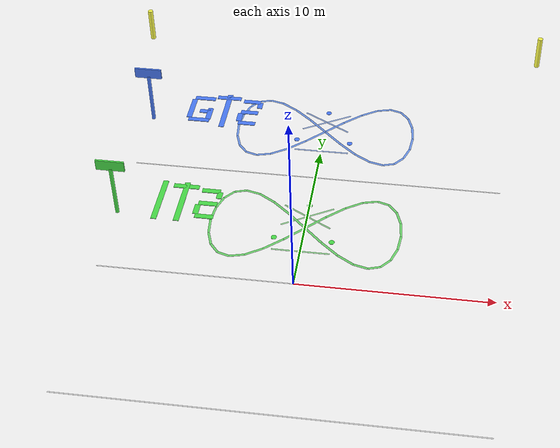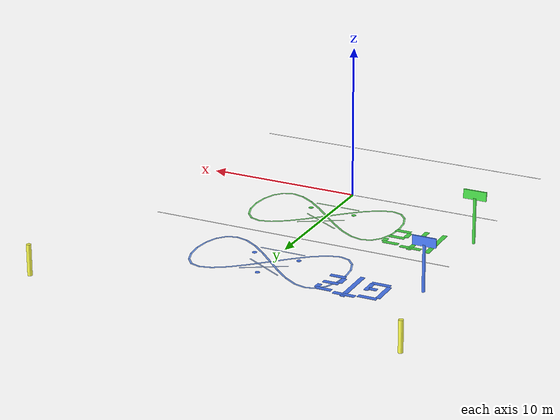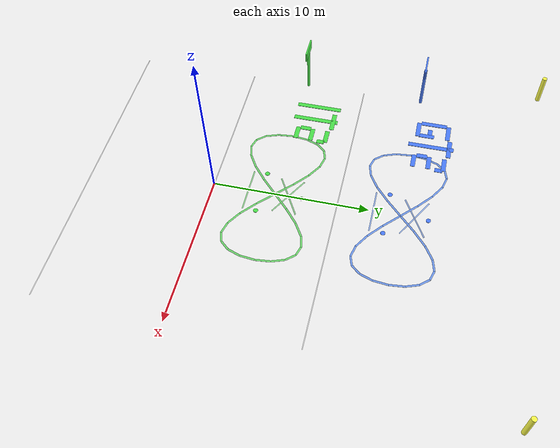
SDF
<sdf version="1.6">
 <world name="professional_formation_arena">
  <model name="traj_it2">
   <static>true</static>
   <link name="path">
    <visual name="seg0">
     <pose>0.488 4.478 0.015 0 0 0.7757</pose>
     <geometry><box><size>1.366 0.12 0.015</size></box></geometry>
     <material><ambient>0.3 0.85 0.3 0.85</ambient><diffuse>0.4 0.9 0.4 0.85</diffuse></material>
    </visual>
    <visual name="seg1">
     <pose>1.444 5.362 0.015 0 0 0.7130</pose>
     <geometry><box><size>1.240 0.12 0.015</size></box></geometry>
     <material><ambient>0.3 0.85 0.3 0.85</ambient><diffuse>0.4 0.9 0.4 0.85</diffuse></material>
    </visual>
    <visual name="seg2">
     <pose>2.346 6.039 0.015 0 0 0.5600</pose>
     <geometry><box><size>1.020 0.12 0.015</size></box></geometry>
     <material><ambient>0.3 0.85 0.3 0.85</ambient><diffuse>0.4 0.9 0.4 0.85</diffuse></material>
    </visual>
    <visual name="seg3">
     <pose>3.157 6.405 0.015 0 0 0.2461</pose>
     <geometry><box><size>0.781 0.12 0.015</size></box></geometry>
     <material><ambient>0.3 0.85 0.3 0.85</ambient><diffuse>0.4 0.9 0.4 0.85</diffuse></material>
    </visual>
    <visual name="seg4">
     <pose>3.846 6.405 0.015 0 0 -0.2970</pose>
     <geometry><box><size>0.650 0.12 0.015</size></box></geometry>
     <material><ambient>0.3 0.85 0.3 0.85</ambient><diffuse>0.4 0.9 0.4 0.85</diffuse></material>
    </visual>
    <visual name="seg5">
     <pose>4.388 6.039 0.015 0 0 -0.8648</pose>
     <geometry><box><size>0.712 0.12 0.015</size></box></geometry>
     <material><ambient>0.3 0.85 0.3 0.85</ambient><diffuse>0.4 0.9 0.4 0.85</diffuse></material>
    </visual>
    <visual name="seg6">
     <pose>4.762 5.362 0.015 0 0 -1.2334</pose>
     <geometry><box><size>0.860 0.12 0.015</size></box></geometry>
     <material><ambient>0.3 0.85 0.3 0.85</ambient><diffuse>0.4 0.9 0.4 0.85</diffuse></material>
    </visual>
    <visual name="seg7">
     <pose>4.952 4.478 0.015 0 0 -1.4707</pose>
     <geometry><box><size>0.962 0.12 0.015</size></box></geometry>
     <material><ambient>0.3 0.85 0.3 0.85</ambient><diffuse>0.4 0.9 0.4 0.85</diffuse></material>
    </visual>
    <visual name="seg8">
     <pose>4.952 3.522 0.015 0 0 -1.6709</pose>
     <geometry><box><size>0.962 0.12 0.015</size></box></geometry>
     <material><ambient>0.3 0.85 0.3 0.85</ambient><diffuse>0.4 0.9 0.4 0.85</diffuse></material>
    </visual>
    <visual name="seg9">
     <pose>4.762 2.638 0.015 0 0 -1.9082</pose>
     <geometry><box><size>0.860 0.12 0.015</size></box></geometry>
     <material><ambient>0.3 0.85 0.3 0.85</ambient><diffuse>0.4 0.9 0.4 0.85</diffuse></material>
    </visual>
    <visual name="seg10">
     <pose>4.388 1.961 0.015 0 0 -2.2768</pose>
     <geometry><box><size>0.712 0.12 0.015</size></box></geometry>
     <material><ambient>0.3 0.85 0.3 0.85</ambient><diffuse>0.4 0.9 0.4 0.85</diffuse></material>
    </visual>
    <visual name="seg11">
     <pose>3.846 1.595 0.015 0 0 -2.8446</pose>
     <geometry><box><size>0.650 0.12 0.015</size></box></geometry>
     <material><ambient>0.3 0.85 0.3 0.85</ambient><diffuse>0.4 0.9 0.4 0.85</diffuse></material>
    </visual>
    <visual name="seg12">
     <pose>3.157 1.595 0.015 0 0 2.8955</pose>
     <geometry><box><size>0.781 0.12 0.015</size></box></geometry>
     <material><ambient>0.3 0.85 0.3 0.85</ambient><diffuse>0.4 0.9 0.4 0.85</diffuse></material>
    </visual>
    <visual name="seg13">
     <pose>2.346 1.961 0.015 0 0 2.5816</pose>
     <geometry><box><size>1.020 0.12 0.015</size></box></geometry>
     <material><ambient>0.3 0.85 0.3 0.85</ambient><diffuse>0.4 0.9 0.4 0.85</diffuse></material>
    </visual>
    <visual name="seg14">
     <pose>1.444 2.638 0.015 0 0 2.4286</pose>
     <geometry><box><size>1.240 0.12 0.015</size></box></geometry>
     <material><ambient>0.3 0.85 0.3 0.85</ambient><diffuse>0.4 0.9 0.4 0.85</diffuse></material>
    </visual>
    <visual name="seg15">
     <pose>0.488 3.522 0.015 0 0 2.3659</pose>
     <geometry><box><size>1.366 0.12 0.015</size></box></geometry>
     <material><ambient>0.3 0.85 0.3 0.85</ambient><diffuse>0.4 0.9 0.4 0.85</diffuse></material>
    </visual>
    <visual name="seg16">
     <pose>-0.488 4.478 0.015 0 0 2.3659</pose>
     <geometry><box><size>1.366 0.12 0.015</size></box></geometry>
     <material><ambient>0.3 0.85 0.3 0.85</ambient><diffuse>0.4 0.9 0.4 0.85</diffuse></material>
    </visual>
    <visual name="seg17">
     <pose>-1.444 5.362 0.015 0 0 2.4286</pose>
     <geometry><box><size>1.240 0.12 0.015</size></box></geometry>
     <material><ambient>0.3 0.85 0.3 0.85</ambient><diffuse>0.4 0.9 0.4 0.85</diffuse></material>
    </visual>
    <visual name="seg18">
     <pose>-2.346 6.039 0.015 0 0 2.5816</pose>
     <geometry><box><size>1.020 0.12 0.015</size></box></geometry>
     <material><ambient>0.3 0.85 0.3 0.85</ambient><diffuse>0.4 0.9 0.4 0.85</diffuse></material>
    </visual>
    <visual name="seg19">
     <pose>-3.157 6.405 0.015 0 0 2.8955</pose>
     <geometry><box><size>0.781 0.12 0.015</size></box></geometry>
     <material><ambient>0.3 0.85 0.3 0.85</ambient><diffuse>0.4 0.9 0.4 0.85</diffuse></material>
    </visual>
    <visual name="seg20">
     <pose>-3.846 6.405 0.015 0 0 -2.8446</pose>
     <geometry><box><size>0.650 0.12 0.015</size></box></geometry>
     <material><ambient>0.3 0.85 0.3 0.85</ambient><diffuse>0.4 0.9 0.4 0.85</diffuse></material>
    </visual>
    <visual name="seg21">
     <pose>-4.388 6.039 0.015 0 0 -2.2768</pose>
     <geometry><box><size>0.712 0.12 0.015</size></box></geometry>
     <material><ambient>0.3 0.85 0.3 0.85</ambient><diffuse>0.4 0.9 0.4 0.85</diffuse></material>
    </visual>
    <visual name="seg22">
     <pose>-4.762 5.362 0.015 0 0 -1.9082</pose>
     <geometry><box><size>0.860 0.12 0.015</size></box></geometry>
     <material><ambient>0.3 0.85 0.3 0.85</ambient><diffuse>0.4 0.9 0.4 0.85</diffuse></material>
    </visual>
    <visual name="seg23">
     <pose>-4.952 4.478 0.015 0 0 -1.6709</pose>
     <geometry><box><size>0.962 0.12 0.015</size></box></geometry>
     <material><ambient>0.3 0.85 0.3 0.85</ambient><diffuse>0.4 0.9 0.4 0.85</diffuse></material>
    </visual>
    <visual name="seg24">
     <pose>-4.952 3.522 0.015 0 0 -1.4707</pose>
     <geometry><box><size>0.962 0.12 0.015</size></box></geometry>
     <material><ambient>0.3 0.85 0.3 0.85</ambient><diffuse>0.4 0.9 0.4 0.85</diffuse></material>
    </visual>
    <visual name="seg25">
     <pose>-4.762 2.638 0.015 0 0 -1.2334</pose>
     <geometry><box><size>0.860 0.12 0.015</size></box></geometry>
     <material><ambient>0.3 0.85 0.3 0.85</ambient><diffuse>0.4 0.9 0.4 0.85</diffuse></material>
    </visual>
    <visual name="seg26">
     <pose>-4.388 1.961 0.015 0 0 -0.8648</pose>
     <geometry><box><size>0.712 0.12 0.015</size></box></geometry>
     <material><ambient>0.3 0.85 0.3 0.85</ambient><diffuse>0.4 0.9 0.4 0.85</diffuse></material>
    </visual>
    <visual name="seg27">
     <pose>-3.846 1.595 0.015 0 0 -0.2970</pose>
     <geometry><box><size>0.650 0.12 0.015</size></box></geometry>
     <material><ambient>0.3 0.85 0.3 0.85</ambient><diffuse>0.4 0.9 0.4 0.85</diffuse></material>
    </visual>
    <visual name="seg28">
     <pose>-3.157 1.595 0.015 0 0 0.2461</pose>
     <geometry><box><size>0.781 0.12 0.015</size></box></geometry>
     <material><ambient>0.3 0.85 0.3 0.85</ambient><diffuse>0.4 0.9 0.4 0.85</diffuse></material>
    </visual>
    <visual name="seg29">
     <pose>-2.346 1.961 0.015 0 0 0.5600</pose>
     <geometry><box><size>1.020 0.12 0.015</size></box></geometry>
     <material><ambient>0.3 0.85 0.3 0.85</ambient><diffuse>0.4 0.9 0.4 0.85</diffuse></material>
    </visual>
    <visual name="seg30">
     <pose>-1.444 2.638 0.015 0 0 0.7130</pose>
     <geometry><box><size>1.240 0.12 0.015</size></box></geometry>
     <material><ambient>0.3 0.85 0.3 0.85</ambient><diffuse>0.4 0.9 0.4 0.85</diffuse></material>
    </visual>
    <visual name="seg31">
     <pose>-0.488 3.522 0.015 0 0 0.7757</pose>
     <geometry><box><size>1.366 0.12 0.015</size></box></geometry>
     <material><ambient>0.3 0.85 0.3 0.85</ambient><diffuse>0.4 0.9 0.4 0.85</diffuse></material>
    </visual>
   </link>
  </model>
  <model name="traj_gt2">
   <static>true</static>
   <link name="path">
    <visual name="seg0">
     <pose>0.488 12.478 0.015 0 0 0.7757</pose>
     <geometry><box><size>1.366 0.12 0.015</size></box></geometry>
     <material><ambient>0.3 0.5 1 0.85</ambient><diffuse>0.4 0.6 1 0.85</diffuse></material>
    </visual>
    <visual name="seg1">
     <pose>1.444 13.362 0.015 0 0 0.7130</pose>
     <geometry><box><size>1.240 0.12 0.015</size></box></geometry>
     <material><ambient>0.3 0.5 1 0.85</ambient><diffuse>0.4 0.6 1 0.85</diffuse></material>
    </visual>
    <visual name="seg2">
     <pose>2.346 14.039 0.015 0 0 0.5600</pose>
     <geometry><box><size>1.020 0.12 0.015</size></box></geometry>
     <material><ambient>0.3 0.5 1 0.85</ambient><diffuse>0.4 0.6 1 0.85</diffuse></material>
    </visual>
    <visual name="seg3">
     <pose>3.157 14.405 0.015 0 0 0.2461</pose>
     <geometry><box><size>0.781 0.12 0.015</size></box></geometry>
     <material><ambient>0.3 0.5 1 0.85</ambient><diffuse>0.4 0.6 1 0.85</diffuse></material>
    </visual>
    <visual name="seg4">
     <pose>3.846 14.405 0.015 0 0 -0.2970</pose>
     <geometry><box><size>0.650 0.12 0.015</size></box></geometry>
     <material><ambient>0.3 0.5 1 0.85</ambient><diffuse>0.4 0.6 1 0.85</diffuse></material>
    </visual>
    <visual name="seg5">
     <pose>4.388 14.039 0.015 0 0 -0.8648</pose>
     <geometry><box><size>0.712 0.12 0.015</size></box></geometry>
     <material><ambient>0.3 0.5 1 0.85</ambient><diffuse>0.4 0.6 1 0.85</diffuse></material>
    </visual>
    <visual name="seg6">
     <pose>4.762 13.362 0.015 0 0 -1.2334</pose>
     <geometry><box><size>0.860 0.12 0.015</size></box></geometry>
     <material><ambient>0.3 0.5 1 0.85</ambient><diffuse>0.4 0.6 1 0.85</diffuse></material>
    </visual>
    <visual name="seg7">
     <pose>4.952 12.478 0.015 0 0 -1.4707</pose>
     <geometry><box><size>0.962 0.12 0.015</size></box></geometry>
     <material><ambient>0.3 0.5 1 0.85</ambient><diffuse>0.4 0.6 1 0.85</diffuse></material>
    </visual>
    <visual name="seg8">
     <pose>4.952 11.522 0.015 0 0 -1.6709</pose>
     <geometry><box><size>0.962 0.12 0.015</size></box></geometry>
     <material><ambient>0.3 0.5 1 0.85</ambient><diffuse>0.4 0.6 1 0.85</diffuse></material>
    </visual>
    <visual name="seg9">
     <pose>4.762 10.638 0.015 0 0 -1.9082</pose>
     <geometry><box><size>0.860 0.12 0.015</size></box></geometry>
     <material><ambient>0.3 0.5 1 0.85</ambient><diffuse>0.4 0.6 1 0.85</diffuse></material>
    </visual>
    <visual name="seg10">
     <pose>4.388 9.961 0.015 0 0 -2.2768</pose>
     <geometry><box><size>0.712 0.12 0.015</size></box></geometry>
     <material><ambient>0.3 0.5 1 0.85</ambient><diffuse>0.4 0.6 1 0.85</diffuse></material>
    </visual>
    <visual name="seg11">
     <pose>3.846 9.595 0.015 0 0 -2.8446</pose>
     <geometry><box><size>0.650 0.12 0.015</size></box></geometry>
     <material><ambient>0.3 0.5 1 0.85</ambient><diffuse>0.4 0.6 1 0.85</diffuse></material>
    </visual>
    <visual name="seg12">
     <pose>3.157 9.595 0.015 0 0 2.8955</pose>
     <geometry><box><size>0.781 0.12 0.015</size></box></geometry>
     <material><ambient>0.3 0.5 1 0.85</ambient><diffuse>0.4 0.6 1 0.85</diffuse></material>
    </visual>
    <visual name="seg13">
     <pose>2.346 9.961 0.015 0 0 2.5816</pose>
     <geometry><box><size>1.020 0.12 0.015</size></box></geometry>
     <material><ambient>0.3 0.5 1 0.85</ambient><diffuse>0.4 0.6 1 0.85</diffuse></material>
    </visual>
    <visual name="seg14">
     <pose>1.444 10.638 0.015 0 0 2.4286</pose>
     <geometry><box><size>1.240 0.12 0.015</size></box></geometry>
     <material><ambient>0.3 0.5 1 0.85</ambient><diffuse>0.4 0.6 1 0.85</diffuse></material>
    </visual>
    <visual name="seg15">
     <pose>0.488 11.522 0.015 0 0 2.3659</pose>
     <geometry><box><size>1.366 0.12 0.015</size></box></geometry>
     <material><ambient>0.3 0.5 1 0.85</ambient><diffuse>0.4 0.6 1 0.85</diffuse></material>
    </visual>
    <visual name="seg16">
     <pose>-0.488 12.478 0.015 0 0 2.3659</pose>
     <geometry><box><size>1.366 0.12 0.015</size></box></geometry>
     <material><ambient>0.3 0.5 1 0.85</ambient><diffuse>0.4 0.6 1 0.85</diffuse></material>
    </visual>
    <visual name="seg17">
     <pose>-1.444 13.362 0.015 0 0 2.4286</pose>
     <geometry><box><size>1.240 0.12 0.015</size></box></geometry>
     <material><ambient>0.3 0.5 1 0.85</ambient><diffuse>0.4 0.6 1 0.85</diffuse></material>
    </visual>
    <visual name="seg18">
     <pose>-2.346 14.039 0.015 0 0 2.5816</pose>
     <geometry><box><size>1.020 0.12 0.015</size></box></geometry>
     <material><ambient>0.3 0.5 1 0.85</ambient><diffuse>0.4 0.6 1 0.85</diffuse></material>
    </visual>
    <visual name="seg19">
     <pose>-3.157 14.405 0.015 0 0 2.8955</pose>
     <geometry><box><size>0.781 0.12 0.015</size></box></geometry>
     <material><ambient>0.3 0.5 1 0.85</ambient><diffuse>0.4 0.6 1 0.85</diffuse></material>
    </visual>
    <visual name="seg20">
     <pose>-3.846 14.405 0.015 0 0 -2.8446</pose>
     <geometry><box><size>0.650 0.12 0.015</size></box></geometry>
     <material><ambient>0.3 0.5 1 0.85</ambient><diffuse>0.4 0.6 1 0.85</diffuse></material>
    </visual>
    <visual name="seg21">
     <pose>-4.388 14.039 0.015 0 0 -2.2768</pose>
     <geometry><box><size>0.712 0.12 0.015</size></box></geometry>
     <material><ambient>0.3 0.5 1 0.85</ambient><diffuse>0.4 0.6 1 0.85</diffuse></material>
    </visual>
    <visual name="seg22">
     <pose>-4.762 13.362 0.015 0 0 -1.9082</pose>
     <geometry><box><size>0.860 0.12 0.015</size></box></geometry>
     <material><ambient>0.3 0.5 1 0.85</ambient><diffuse>0.4 0.6 1 0.85</diffuse></material>
    </visual>
    <visual name="seg23">
     <pose>-4.952 12.478 0.015 0 0 -1.6709</pose>
     <geometry><box><size>0.962 0.12 0.015</size></box></geometry>
     <material><ambient>0.3 0.5 1 0.85</ambient><diffuse>0.4 0.6 1 0.85</diffuse></material>
    </visual>
    <visual name="seg24">
     <pose>-4.952 11.522 0.015 0 0 -1.4707</pose>
     <geometry><box><size>0.962 0.12 0.015</size></box></geometry>
     <material><ambient>0.3 0.5 1 0.85</ambient><diffuse>0.4 0.6 1 0.85</diffuse></material>
    </visual>
    <visual name="seg25">
     <pose>-4.762 10.638 0.015 0 0 -1.2334</pose>
     <geometry><box><size>0.860 0.12 0.015</size></box></geometry>
     <material><ambient>0.3 0.5 1 0.85</ambient><diffuse>0.4 0.6 1 0.85</diffuse></material>
    </visual>
    <visual name="seg26">
     <pose>-4.388 9.961 0.015 0 0 -0.8648</pose>
     <geometry><box><size>0.712 0.12 0.015</size></box></geometry>
     <material><ambient>0.3 0.5 1 0.85</ambient><diffuse>0.4 0.6 1 0.85</diffuse></material>
    </visual>
    <visual name="seg27">
     <pose>-3.846 9.595 0.015 0 0 -0.2970</pose>
     <geometry><box><size>0.650 0.12 0.015</size></box></geometry>
     <material><ambient>0.3 0.5 1 0.85</ambient><diffuse>0.4 0.6 1 0.85</diffuse></material>
    </visual>
    <visual name="seg28">
     <pose>-3.157 9.595 0.015 0 0 0.2461</pose>
     <geometry><box><size>0.781 0.12 0.015</size></box></geometry>
     <material><ambient>0.3 0.5 1 0.85</ambient><diffuse>0.4 0.6 1 0.85</diffuse></material>
    </visual>
    <visual name="seg29">
     <pose>-2.346 9.961 0.015 0 0 0.5600</pose>
     <geometry><box><size>1.020 0.12 0.015</size></box></geometry>
     <material><ambient>0.3 0.5 1 0.85</ambient><diffuse>0.4 0.6 1 0.85</diffuse></material>
    </visual>
    <visual name="seg30">
     <pose>-1.444 10.638 0.015 0 0 0.7130</pose>
     <geometry><box><size>1.240 0.12 0.015</size></box></geometry>
     <material><ambient>0.3 0.5 1 0.85</ambient><diffuse>0.4 0.6 1 0.85</diffuse></material>
    </visual>
    <visual name="seg31">
     <pose>-0.488 11.522 0.015 0 0 0.7757</pose>
     <geometry><box><size>1.366 0.12 0.015</size></box></geometry>
     <material><ambient>0.3 0.5 1 0.85</ambient><diffuse>0.4 0.6 1 0.85</diffuse></material>
    </visual>
   </link>
  </model>
  <model name="post_it2">
   <static>true</static>
   <pose>-10 4 0 0 0 0</pose>
   <link name="link">
    <visual name="pole">
     <pose>0 0 1.5 0 0 0</pose>
     <geometry><cylinder><radius>0.1</radius><length>3.0</length></cylinder></geometry>
     <material><ambient>0.2 0.8 0.2 1</ambient><diffuse>0.3 0.9 0.3 1</diffuse></material>
    </visual>
    <visual name="sign">
     <pose>0 0 3.2 0 0 0</pose>
     <geometry><box><size>1.5 0.1 0.6</size></box></geometry>
     <material><ambient>0.2 0.8 0.2 1</ambient><diffuse>0.3 0.9 0.3 1</diffuse></material>
    </visual>
   </link>
  </model>
  <model name="post_gt2">
   <static>true</static>
   <pose>-10 12 0 0 0 0</pose>
   <link name="link">
    <visual name="pole">
     <pose>0 0 1.5 0 0 0</pose>
     <geometry><cylinder><radius>0.1</radius><length>3.0</length></cylinder></geometry>
     <material><ambient>0.2 0.4 1 1</ambient><diffuse>0.3 0.5 1 1</diffuse></material>
    </visual>
    <visual name="sign">
     <pose>0 0 3.2 0 0 0</pose>
     <geometry><box><size>1.5 0.1 0.6</size></box></geometry>
     <material><ambient>0.2 0.4 1 1</ambient><diffuse>0.3 0.5 1 1</diffuse></material>
    </visual>
   </link>
  </model>
  <model name="corner_nw">
   <static>true</static>
   <pose>-12 20 0 0 0 0</pose>
   <link name="link">
    <visual name="v">
     <pose>0 0 1 0 0 0</pose>
     <geometry><cylinder><radius>0.15</radius><length>2.0</length></cylinder></geometry>
     <material><ambient>0.9 0.9 0.2 1</ambient><diffuse>1 1 0.3 1</diffuse></material>
    </visual>
   </link>
  </model>
  <model name="corner_ne">
   <static>true</static>
   <pose>12 20 0 0 0 0</pose>
   <link name="link">
    <visual name="v">
     <pose>0 0 1 0 0 0</pose>
     <geometry><cylinder><radius>0.15</radius><length>2.0</length></cylinder></geometry>
     <material><ambient>0.9 0.9 0.2 1</ambient><diffuse>1 1 0.3 1</diffuse></material>
    </visual>
   </link>
  </model>
  <model name="lane_lines">
   <static>true</static>
   <link name="link">
    <visual name="line1">
     <pose>0 -8 0.01 0 0 0</pose>
     <geometry><box><size>20 0.05 0.01</size></box></geometry>
     <material><ambient>1 1 1 0.5</ambient><diffuse>1 1 1 0.5</diffuse></material>
    </visual>
    <visual name="line2">
     <pose>0 0 0.01 0 0 0</pose>
     <geometry><box><size>20 0.05 0.01</size></box></geometry>
     <material><ambient>1 1 1 0.5</ambient><diffuse>1 1 1 0.5</diffuse></material>
    </visual>
    <visual name="line3">
     <pose>0 8 0.01 0 0 0</pose>
     <geometry><box><size>20 0.05 0.01</size></box></geometry>
     <material><ambient>1 1 1 0.5</ambient><diffuse>1 1 1 0.5</diffuse></material>
    </visual>
   </link>
  </model>
  <model name="label_ground_it2">
   <static>true</static>
   <pose>-8 4 0.02 0 0 0</pose>
   <link name="link">
    <visual name="i1">
     <pose>0 1.2 0 0 0 0</pose>
     <geometry><box><size>0.3 3.0 0.03</size></box></geometry>
     <material><ambient>0.2 0.8 0.2 1</ambient><diffuse>0.3 0.9 0.3 1</diffuse></material>
    </visual>
    <visual name="t1">
     <pose>1.2 1.2 0 0 0 0</pose>
     <geometry><box><size>0.3 3.0 0.03</size></box></geometry>
     <material><ambient>0.2 0.8 0.2 1</ambient><diffuse>0.3 0.9 0.3 1</diffuse></material>
    </visual>
    <visual name="t2">
     <pose>1.2 2.4 0 0 0 0</pose>
     <geometry><box><size>1.4 0.3 0.03</size></box></geometry>
     <material><ambient>0.2 0.8 0.2 1</ambient><diffuse>0.3 0.9 0.3 1</diffuse></material>
    </visual>
    <visual name="n1">
     <pose>2.6 2.2 0 0 0 0</pose>
     <geometry><box><size>1.0 0.3 0.03</size></box></geometry>
     <material><ambient>0.2 0.8 0.2 1</ambient><diffuse>0.3 0.9 0.3 1</diffuse></material>
    </visual>
    <visual name="n2">
     <pose>3.1 1.9 0 0 0 0</pose>
     <geometry><box><size>0.3 0.5 0.03</size></box></geometry>
     <material><ambient>0.2 0.8 0.2 1</ambient><diffuse>0.3 0.9 0.3 1</diffuse></material>
    </visual>
    <visual name="n3">
     <pose>2.6 1.2 0 0 0 0</pose>
     <geometry><box><size>1.0 0.3 0.03</size></box></geometry>
     <material><ambient>0.2 0.8 0.2 1</ambient><diffuse>0.3 0.9 0.3 1</diffuse></material>
    </visual>
    <visual name="n4">
     <pose>2.1 0.7 0 0 0 0</pose>
     <geometry><box><size>0.3 0.7 0.03</size></box></geometry>
     <material><ambient>0.2 0.8 0.2 1</ambient><diffuse>0.3 0.9 0.3 1</diffuse></material>
    </visual>
    <visual name="n5">
     <pose>2.6 0.2 0 0 0 0</pose>
     <geometry><box><size>1.0 0.3 0.03</size></box></geometry>
     <material><ambient>0.2 0.8 0.2 1</ambient><diffuse>0.3 0.9 0.3 1</diffuse></material>
    </visual>
   </link>
  </model>
  <model name="label_ground_gt2">
   <static>true</static>
   <pose>-8 12 0.02 0 0 0</pose>
   <link name="link">
    <visual name="g1">
     <pose>0.6 2.2 0 0 0 0</pose>
     <geometry><box><size>1.2 0.3 0.03</size></box></geometry>
     <material><ambient>0.2 0.4 1 1</ambient><diffuse>0.3 0.5 1 1</diffuse></material>
    </visual>
    <visual name="g2">
     <pose>0 1.2 0 0 0 0</pose>
     <geometry><box><size>0.3 1.7 0.03</size></box></geometry>
     <material><ambient>0.2 0.4 1 1</ambient><diffuse>0.3 0.5 1 1</diffuse></material>
    </visual>
    <visual name="g3">
     <pose>0.6 0.2 0 0 0 0</pose>
     <geometry><box><size>1.2 0.3 0.03</size></box></geometry>
     <material><ambient>0.2 0.4 1 1</ambient><diffuse>0.3 0.5 1 1</diffuse></material>
    </visual>
    <visual name="g4">
     <pose>1.1 0.8 0 0 0 0</pose>
     <geometry><box><size>0.3 1.0 0.03</size></box></geometry>
     <material><ambient>0.2 0.4 1 1</ambient><diffuse>0.3 0.5 1 1</diffuse></material>
    </visual>
    <visual name="g5">
     <pose>0.8 1.0 0 0 0 0</pose>
     <geometry><box><size>0.6 0.3 0.03</size></box></geometry>
     <material><ambient>0.2 0.4 1 1</ambient><diffuse>0.3 0.5 1 1</diffuse></material>
    </visual>
    <visual name="t1">
     <pose>2.0 1.2 0 0 0 0</pose>
     <geometry><box><size>0.3 3.0 0.03</size></box></geometry>
     <material><ambient>0.2 0.4 1 1</ambient><diffuse>0.3 0.5 1 1</diffuse></material>
    </visual>
    <visual name="t2">
     <pose>2.0 2.4 0 0 0 0</pose>
     <geometry><box><size>1.4 0.3 0.03</size></box></geometry>
     <material><ambient>0.2 0.4 1 1</ambient><diffuse>0.3 0.5 1 1</diffuse></material>
    </visual>
    <visual name="n1">
     <pose>3.4 2.2 0 0 0 0</pose>
     <geometry><box><size>1.0 0.3 0.03</size></box></geometry>
     <material><ambient>0.2 0.4 1 1</ambient><diffuse>0.3 0.5 1 1</diffuse></material>
    </visual>
    <visual name="n2">
     <pose>3.9 1.9 0 0 0 0</pose>
     <geometry><box><size>0.3 0.5 0.03</size></box></geometry>
     <material><ambient>0.2 0.4 1 1</ambient><diffuse>0.3 0.5 1 1</diffuse></material>
    </visual>
    <visual name="n3">
     <pose>3.4 1.2 0 0 0 0</pose>
     <geometry><box><size>1.0 0.3 0.03</size></box></geometry>
     <material><ambient>0.2 0.4 1 1</ambient><diffuse>0.3 0.5 1 1</diffuse></material>
    </visual>
    <visual name="n4">
     <pose>2.9 0.7 0 0 0 0</pose>
     <geometry><box><size>0.3 0.7 0.03</size></box></geometry>
     <material><ambient>0.2 0.4 1 1</ambient><diffuse>0.3 0.5 1 1</diffuse></material>
    </visual>
    <visual name="n5">
     <pose>3.4 0.2 0 0 0 0</pose>
     <geometry><box><size>1.0 0.3 0.03</size></box></geometry>
     <material><ambient>0.2 0.4 1 1</ambient><diffuse>0.3 0.5 1 1</diffuse></material>
    </visual>
   </link>
  </model>
  <model name="formation_outline_it2">
   <static>true</static>
   <pose>0 4 0.012 0 0 0</pose>
   <link name="link">
    <visual name="edge1">
     <pose>0 0.87 0 0 0 0.524</pose>
     <geometry><box><size>3.0 0.08 0.01</size></box></geometry>
     <material><ambient>0.3 0.8 0.3 0.6</ambient><diffuse>0.4 0.9 0.4 0.6</diffuse></material>
    </visual>
    <visual name="edge2">
     <pose>0 0.87 0 0 0 -0.524</pose>
     <geometry><box><size>3.0 0.08 0.01</size></box></geometry>
     <material><ambient>0.3 0.8 0.3 0.6</ambient><diffuse>0.4 0.9 0.4 0.6</diffuse></material>
    </visual>
    <visual name="edge3">
     <pose>0 -1.73 0 0 0 0</pose>
     <geometry><box><size>3.0 0.08 0.01</size></box></geometry>
     <material><ambient>0.3 0.8 0.3 0.6</ambient><diffuse>0.4 0.9 0.4 0.6</diffuse></material>
    </visual>
    <visual name="v1">
     <pose>0 1.73 0 0 0 0</pose>
     <geometry><cylinder><radius>0.15</radius><length>0.02</length></cylinder></geometry>
     <material><ambient>0.2 0.8 0.2 1</ambient><diffuse>0.3 0.9 0.3 1</diffuse></material>
    </visual>
    <visual name="v2">
     <pose>-1.5 -0.87 0 0 0 0</pose>
     <geometry><cylinder><radius>0.15</radius><length>0.02</length></cylinder></geometry>
     <material><ambient>0.2 0.8 0.2 1</ambient><diffuse>0.3 0.9 0.3 1</diffuse></material>
    </visual>
    <visual name="v3">
     <pose>1.5 -0.87 0 0 0 0</pose>
     <geometry><cylinder><radius>0.15</radius><length>0.02</length></cylinder></geometry>
     <material><ambient>0.2 0.8 0.2 1</ambient><diffuse>0.3 0.9 0.3 1</diffuse></material>
    </visual>
   </link>
  </model>
  <model name="formation_outline_gt2">
   <static>true</static>
   <pose>0 12 0.012 0 0 0</pose>
   <link name="link">
    <visual name="edge1">
     <pose>0 0.87 0 0 0 0.524</pose>
     <geometry><box><size>3.0 0.08 0.01</size></box></geometry>
     <material><ambient>0.3 0.5 1 0.6</ambient><diffuse>0.4 0.6 1 0.6</diffuse></material>
    </visual>
    <visual name="edge2">
     <pose>0 0.87 0 0 0 -0.524</pose>
     <geometry><box><size>3.0 0.08 0.01</size></box></geometry>
     <material><ambient>0.3 0.5 1 0.6</ambient><diffuse>0.4 0.6 1 0.6</diffuse></material>
    </visual>
    <visual name="edge3">
     <pose>0 -1.73 0 0 0 0</pose>
     <geometry><box><size>3.0 0.08 0.01</size></box></geometry>
     <material><ambient>0.3 0.5 1 0.6</ambient><diffuse>0.4 0.6 1 0.6</diffuse></material>
    </visual>
    <visual name="v1">
     <pose>0 1.73 0 0 0 0</pose>
     <geometry><cylinder><radius>0.15</radius><length>0.02</length></cylinder></geometry>
     <material><ambient>0.2 0.4 1 1</ambient><diffuse>0.3 0.5 1 1</diffuse></material>
    </visual>
    <visual name="v2">
     <pose>-1.5 -0.87 0 0 0 0</pose>
     <geometry><cylinder><radius>0.15</radius><length>0.02</length></cylinder></geometry>
     <material><ambient>0.2 0.4 1 1</ambient><diffuse>0.3 0.5 1 1</diffuse></material>
    </visual>
    <visual name="v3">
     <pose>1.5 -0.87 0 0 0 0</pose>
     <geometry><cylinder><radius>0.15</radius><length>0.02</length></cylinder></geometry>
     <material><ambient>0.2 0.4 1 1</ambient><diffuse>0.3 0.5 1 1</diffuse></material>
    </visual>
   </link>
  </model>
 </world>
</sdf>
